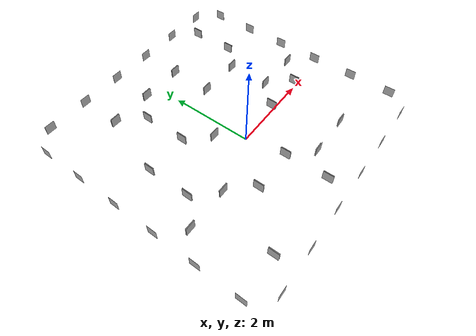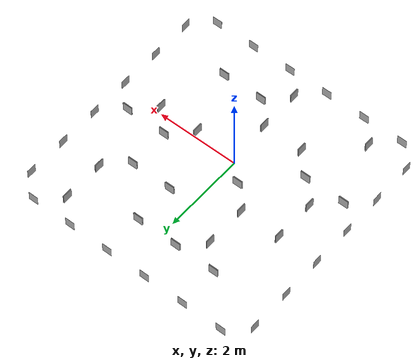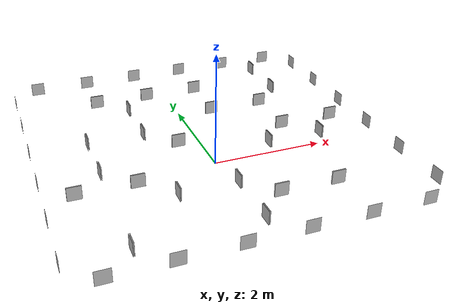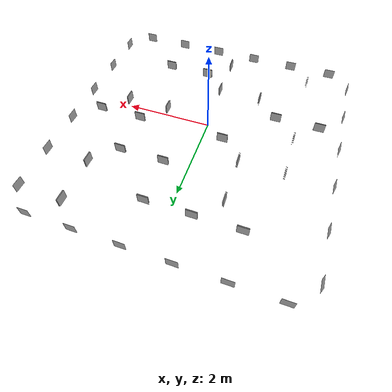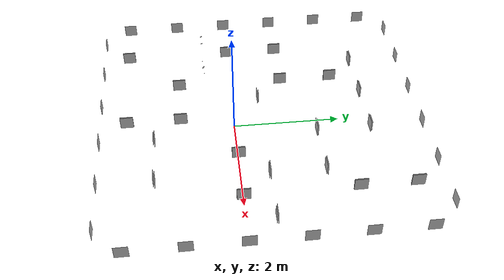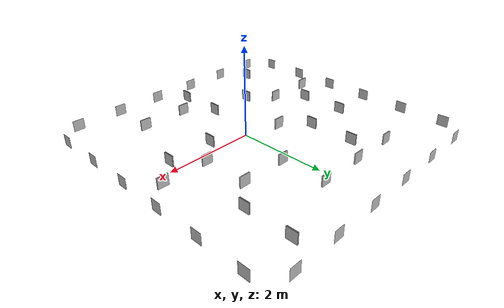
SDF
<sdf version="1.5">
 <world name="maze_6x6_v1">
  <plugin name="gz::sim::systems::Physics" filename="libgz-sim-physics-system.so"/>
  <plugin name="gz::sim::systems::UserCommands" filename="libgz-sim-user-commands-system.so"/>
  <plugin name="gz::sim::systems::SceneBroadcaster" filename="libgz-sim-scene-broadcaster-system.so"/>
  <plugin name="gz::sim::systems::Sensors" filename="libgz-sim-sensors-system.so">
   <render_engine>ogre2</render_engine>
  </plugin>
  <plugin name="gz::sim::systems::Imu" filename="libgz-sim-imu-system.so"/>
  <plugin name="gz::sim::systems::NavSat" filename="libgz-sim-navsat-system.so"/>
  <physics type="ode">
   <max_step_size>0.00625</max_step_size>
   <real_time_factor>1</real_time_factor>
   <real_time_update_rate>160</real_time_update_rate>
   <gravity>0 0 -9.8</gravity>
  </physics>
  <scene>
   <shadows>false</shadows>
   <ambient>0.2 0.2 0.2 1</ambient>
   <background>1 1 1 1</background>
   <grid>false</grid>
   <origin_visual>false</origin_visual>
  </scene>
  <light name="sun" type="directional">
   <cast_shadows>false</cast_shadows>
   <pose>0 0 10 0 0 0</pose>
   <diffuse>0.9 0.9 0.9 1</diffuse>
   <specular>0.2 0.2 0.2 1</specular>
   <direction>-0.3 0.2 -1</direction>
  </light>
  <light name="camera_spot_1_light" type="spot">
   <pose>-6 4 4 0 -1 -0.8</pose>
   <diffuse>0.5 0.5 0.5 1</diffuse>
   <specular>0.1 0.1 0.1 1</specular>
   <direction>0 0 -1</direction>
   <attenuation>
    <range>20</range>
    <constant>0.2</constant>
    <linear>0.01</linear>
    <quadratic>0.001</quadratic>
   </attenuation>
   <cast_shadows>0</cast_shadows>
   <spot><inner_angle>0.6</inner_angle><outer_angle>1</outer_angle><falloff>1</falloff></spot>
  </light>
  <light name="camera_spot_2_light" type="spot">
   <pose>5 -3 4 0 0.8 -0.6</pose>
   <diffuse>0.5 0.5 0.5 1</diffuse>
   <specular>0.1 0.1 0.1 1</specular>
   <direction>0 0 -1</direction>
   <attenuation>
    <range>20</range>
    <constant>0.3</constant>
    <linear>0.01</linear>
    <quadratic>0.001</quadratic>
   </attenuation>
   <cast_shadows>0</cast_shadows>
   <spot><inner_angle>0.6</inner_angle><outer_angle>1</outer_angle><falloff>1</falloff></spot>
  </light>
  <include><uri>model://maze_3_tags</uri><pose>-3 -2.5 0 0 0 0</pose></include>
 </world>
</sdf>

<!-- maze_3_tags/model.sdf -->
<sdf version="1.5">

 <model name="tag36h11_maze_3">
    <static>true</static>
    <link name='tags'>

<!-- Row 0, outer wall along increasing x axis (y:0) -->
<!-- Tags 0 to 9 -->
      <visual name='tag36_11_00000'>
        <!-- Y: sets yaw or direction towards the ar tag is pointing to -->
        <pose>0.5 0.011 0.3 1.5708 0 3.14159</pose>
        <cast_shadows>false</cast_shadows>
        <geometry>
          <plane>
            <normal>0 0 1</normal>
            <size>0.24 0.24</size>
          </plane>
        </geometry>
        <material>
          <script>
            <uri>model://maze_3_tags/materials/scripts</uri>
            <uri>model://maze_3_tags/materials/textures</uri>
            <name>tag36_11/00000</name>
          </script>
        </material>
      </visual>

      <visual name='tag36_11_00001'>
        <pose>1.5 0.011 0.3 1.5708 0 3.14159</pose>
        <cast_shadows>false</cast_shadows>
        <geometry>
          <plane>
            <normal>0 0 1</normal>
            <size>0.24 0.24</size>
          </plane>
        </geometry>
        <material>
          <script>
            <uri>model://maze_3_tags/materials/scripts</uri>
            <uri>model://maze_3_tags/materials/textures</uri>
            <name>tag36_11/00001</name>
          </script>
        </material>
      </visual>

      <visual name='tag36_11_00002'>
        <pose>2.5 0.011 0.3 1.5708 0 3.14159</pose>
        <cast_shadows>false</cast_shadows>
        <geometry>
          <plane>
            <normal>0 0 1</normal>
            <size>0.24 0.24</size>
          </plane>
        </geometry>
        <material>
          <script>
            <uri>model://maze_3_tags/materials/scripts</uri>
            <uri>model://maze_3_tags/materials/textures</uri>
            <name>tag36_11/00002</name>
          </script>
        </material>
      </visual>

      <visual name='tag36_11_00003'>
        <pose>3.5 0.011 0.3 1.5708 0 3.14159</pose>
        <cast_shadows>false</cast_shadows>
        <geometry>
          <plane>
            <normal>0 0 1</normal>
            <size>0.24 0.24</size>
          </plane>
        </geometry>
        <material>
          <script>
            <uri>model://maze_3_tags/materials/scripts</uri>
            <uri>model://maze_3_tags/materials/textures</uri>
            <name>tag36_11/00003</name>
          </script>
        </material>
      </visual>

      <visual name='tag36_11_00004'>
        <pose>4.5 0.011 0.3 1.5708 0 3.14159</pose>
        <cast_shadows>false</cast_shadows>
        <geometry>
          <plane>
            <normal>0 0 1</normal>
            <size>0.24 0.24</size>
          </plane>
        </geometry>
        <material>
          <script>
            <uri>model://maze_3_tags/materials/scripts</uri>
            <uri>model://maze_3_tags/materials/textures</uri>
            <name>tag36_11/00004</name>
          </script>
        </material>
      </visual>

      <visual name='tag36_11_00005'>
        <pose>5.5 0.011 0.3 1.5708 0 3.14159</pose>
        <cast_shadows>false</cast_shadows>
        <geometry>
          <plane>
            <normal>0 0 1</normal>
            <size>0.24 0.24</size>
          </plane>
        </geometry>
        <material>
          <script>
            <uri>model://maze_3_tags/materials/scripts</uri>
            <uri>model://maze_3_tags/materials/textures</uri>
            <name>tag36_11/00005</name>
          </script>
        </material>
      </visual>

<!-- Row 1, first row of panels along increasing x axis (y:1) -->
      <!-- Tags 10 to 29 -->
      <!-- Panel 1 in Row 1 -->
      <!-- Panel 2 in Row 1 -->

      <!-- Panel 3 in Row 1 -->

      <!-- Panel 4 in Row 1 -->
      <visual name='tag36_11_00016'>
        <pose>3.5 1.011 0.3 1.5708 0 3.14159</pose>
        <cast_shadows>false</cast_shadows>
        <geometry>
          <plane>
            <normal>0 0 1</normal>
            <size>0.24 0.24</size>
          </plane>
        </geometry>
        <material>
          <script>
            <uri>model://maze_3_tags/materials/scripts</uri>
            <uri>model://maze_3_tags/materials/textures</uri>
            <name>tag36_11/00016</name>
          </script>
        </material>
      </visual>

      <visual name='tag36_11_00017'>
        <pose>3.5 0.989 0.3 1.5708 0 0</pose>
        <cast_shadows>false</cast_shadows>
        <geometry>
          <plane>
            <normal>0 0 1</normal>
            <size>0.24 0.24</size>
          </plane>
        </geometry>
        <material>
          <script>
            <uri>model://maze_3_tags/materials/scripts</uri>
            <uri>model://maze_3_tags/materials/textures</uri>
            <name>tag36_11/00017</name>
          </script>
        </material>
      </visual>

     <!-- Panel 5 in Row 1 -->
      <visual name='tag36_11_00018'>
        <pose>4.5 1.011 0.3 1.5708 0 3.14159</pose>
        <cast_shadows>false</cast_shadows>
        <geometry>
          <plane>
            <normal>0 0 1</normal>
            <size>0.24 0.24</size>
          </plane>
        </geometry>
        <material>
          <script>
            <uri>model://maze_3_tags/materials/scripts</uri>
            <uri>model://maze_3_tags/materials/textures</uri>
            <name>tag36_11/00018</name>
          </script>
        </material>
      </visual>

      <visual name='tag36_11_00019'>
        <pose>4.5 0.989 0.3 1.5708 0 0</pose>
        <cast_shadows>false</cast_shadows>
        <geometry>
          <plane>
            <normal>0 0 1</normal>
            <size>0.24 0.24</size>
          </plane>
        </geometry>
        <material>
          <script>
            <uri>model://maze_3_tags/materials/scripts</uri>
            <uri>model://maze_3_tags/materials/textures</uri>
            <name>tag36_11/00019</name>
          </script>
        </material>
      </visual>

      <!-- Panel 6 in Row 1 -->

<!-- Row 2, second row of panels along increasing x axis (y:2) -->
      <!-- Tags 30 to 49 -->
      <!-- Panel 1 in Row 2 -->
      <visual name='tag36_11_00030'>
        <!-- Y: sets yaw or direction towards the ar tag is pointing to -->
        <pose>0.5 2.011 0.3 1.5708 0 3.14159</pose>
        <cast_shadows>false</cast_shadows>
        <geometry>
          <plane>
            <normal>0 0 1</normal>
            <size>0.24 0.24</size>
          </plane>
        </geometry>
        <material>
          <script>
            <uri>model://maze_3_tags/materials/scripts</uri>
            <uri>model://maze_3_tags/materials/textures</uri>
            <name>tag36_11/00030</name>
          </script>
        </material>
      </visual>

      <visual name='tag36_11_00031'>
        <!-- Y: sets yaw or direction towards the ar tag is pointing to -->
        <pose>0.5 1.989 0.3 1.5708 0 0</pose>
        <cast_shadows>false</cast_shadows>
        <geometry>
          <plane>
            <normal>0 0 1</normal>
            <size>0.24 0.24</size>
          </plane>
        </geometry>
        <material>
          <script>
            <uri>model://maze_3_tags/materials/scripts</uri>
            <uri>model://maze_3_tags/materials/textures</uri>
            <name>tag36_11/00031</name>
          </script>
        </material>
      </visual>

      <!-- Panel 2 in Row 2 -->
      <visual name='tag36_11_00032'>
        <pose>1.5 2.011 0.3 1.5708 0 3.14159</pose>
        <cast_shadows>false</cast_shadows>
        <geometry>
          <plane>
            <normal>0 0 1</normal>
            <size>0.24 0.24</size>
          </plane>
        </geometry>
        <material>
          <script>
            <uri>model://maze_3_tags/materials/scripts</uri>
            <uri>model://maze_3_tags/materials/textures</uri>
            <name>tag36_11/00032</name>
          </script>
        </material>
      </visual>

      <visual name='tag36_11_00033'>
        <pose>1.5 1.989 0.3 1.5708 0 0</pose>
        <cast_shadows>false</cast_shadows>
        <geometry>
          <plane>
            <normal>0 0 1</normal>
            <size>0.24 0.24</size>
          </plane>
        </geometry>
        <material>
          <script>
            <uri>model://maze_3_tags/materials/scripts</uri>
            <uri>model://maze_3_tags/materials/textures</uri>
            <name>tag36_11/00033</name>
          </script>
        </material>
      </visual>

      <!-- Panel 3 in Row 2 -->

      <!-- Panel 4 in Row 2 -->

     <!-- Panel 5 in Row 2 -->

      <!-- Panel 6 in Row 2 -->

<!-- Row 3, third row of panels along increasing x axis (y:3) -->
      <!-- Tags 50 to 69 -->
      <!-- Panel 1 in Row 3 -->
      <!-- Panel 2 in Row 3 -->
      <!-- Panel 3 in Row 3 -->
      <visual name='tag36_11_00054'>
        <pose>2.5 3.011 0.3 1.5708 0 3.14159</pose>
        <cast_shadows>false</cast_shadows>
        <geometry>
          <plane>
            <normal>0 0 1</normal>
            <size>0.24 0.24</size>
          </plane>
        </geometry>
        <material>
          <script>
            <uri>model://maze_3_tags/materials/scripts</uri>
            <uri>model://maze_3_tags/materials/textures</uri>
            <name>tag36_11/00054</name>
          </script>
        </material>
      </visual>

      <visual name='tag36_11_00055'>
        <pose>2.5 2.989 0.3 1.5708 0 0</pose>
        <cast_shadows>false</cast_shadows>
        <geometry>
          <plane>
            <normal>0 0 1</normal>
            <size>0.24 0.24</size>
          </plane>
        </geometry>
        <material>
          <script>
            <uri>model://maze_3_tags/materials/scripts</uri>
            <uri>model://maze_3_tags/materials/textures</uri>
            <name>tag36_11/00055</name>
          </script>
        </material>
      </visual>

      <!-- Panel 4 in Row 3 -->
     <!-- Panel 5 in Row 3 -->
      <visual name='tag36_11_00058'>
        <pose>4.5 3.011 0.3 1.5708 0 3.14159</pose>
        <cast_shadows>false</cast_shadows>
        <geometry>
          <plane>
            <normal>0 0 1</normal>
            <size>0.24 0.24</size>
          </plane>
        </geometry>
        <material>
          <script>
            <uri>model://maze_3_tags/materials/scripts</uri>
            <uri>model://maze_3_tags/materials/textures</uri>
            <name>tag36_11/00058</name>
          </script>
        </material>
      </visual>

      <visual name='tag36_11_00059'>
        <pose>4.5 2.989 0.3 1.5708 0 0</pose>
        <cast_shadows>false</cast_shadows>
        <geometry>
          <plane>
            <normal>0 0 1</normal>
            <size>0.24 0.24</size>
          </plane>
        </geometry>
        <material>
          <script>
            <uri>model://maze_3_tags/materials/scripts</uri>
            <uri>model://maze_3_tags/materials/textures</uri>
            <name>tag36_11/00059</name>
          </script>
        </material>
      </visual>

      <!-- Panel 6 in Row 3 -->
      <visual name='tag36_11_00060'>
        <pose>5.5 3.011 0.3 1.5708 0 3.14159</pose>
        <cast_shadows>false</cast_shadows>
        <geometry>
          <plane>
            <normal>0 0 1</normal>
            <size>0.24 0.24</size>
          </plane>
        </geometry>
        <material>
          <script>
            <uri>model://maze_3_tags/materials/scripts</uri>
            <uri>model://maze_3_tags/materials/textures</uri>
            <name>tag36_11/00060</name>
          </script>
        </material>
      </visual>

      <visual name='tag36_11_00061'>
        <pose>5.5 2.989 0.3 1.5708 0 0</pose>
        <cast_shadows>false</cast_shadows>
        <geometry>
          <plane>
            <normal>0 0 1</normal>
            <size>0.24 0.24</size>
          </plane>
        </geometry>
        <material>
          <script>
            <uri>model://maze_3_tags/materials/scripts</uri>
            <uri>model://maze_3_tags/materials/textures</uri>
            <name>tag36_11/00061</name>
          </script>
        </material>
      </visual>

<!-- Row 4, fourth row of panels along increasing x axis (y:4) -->
      <!-- Tags 70 to 89 -->
      <!-- Panel 1 in Row 4 -->
      <!-- Panel 2 in Row 4 -->
      <!-- Panel 3 in Row 4 -->
      <!-- Panel 4 in Row 4 -->
      <visual name='tag36_11_00076'>
        <pose>3.5 4.011 0.3 1.5708 0 3.14159</pose>
        <cast_shadows>false</cast_shadows>
        <geometry>
          <plane>
            <normal>0 0 1</normal>
            <size>0.24 0.24</size>
          </plane>
        </geometry>
        <material>
          <script>
            <uri>model://maze_3_tags/materials/scripts</uri>
            <uri>model://maze_3_tags/materials/textures</uri>
            <name>tag36_11/00076</name>
          </script>
        </material>
      </visual>

      <visual name='tag36_11_00077'>
        <pose>3.5 3.989 0.3 1.5708 0 0</pose>
        <cast_shadows>false</cast_shadows>
        <geometry>
          <plane>
            <normal>0 0 1</normal>
            <size>0.24 0.24</size>
          </plane>
        </geometry>
        <material>
          <script>
            <uri>model://maze_3_tags/materials/scripts</uri>
            <uri>model://maze_3_tags/materials/textures</uri>
            <name>tag36_11/00077</name>
          </script>
        </material>
      </visual>

     <!-- Panel 5 in Row 4 -->
      <visual name='tag36_11_00078'>
        <pose>4.5 4.011 0.3 1.5708 0 3.14159</pose>
        <cast_shadows>false</cast_shadows>
        <geometry>
          <plane>
            <normal>0 0 1</normal>
            <size>0.24 0.24</size>
          </plane>
        </geometry>
        <material>
          <script>
            <uri>model://maze_3_tags/materials/scripts</uri>
            <uri>model://maze_3_tags/materials/textures</uri>
            <name>tag36_11/00078</name>
          </script>
        </material>
      </visual>

      <visual name='tag36_11_00079'>
        <pose>4.5 3.989 0.3 1.5708 0 0</pose>
        <cast_shadows>false</cast_shadows>
        <geometry>
          <plane>
            <normal>0 0 1</normal>
            <size>0.24 0.24</size>
          </plane>
        </geometry>
        <material>
          <script>
            <uri>model://maze_3_tags/materials/scripts</uri>
            <uri>model://maze_3_tags/materials/textures</uri>
            <name>tag36_11/00079</name>
          </script>
        </material>
      </visual>

      <!-- Panel 6 in Row 4 -->
<!-- Row 5, fifth row of panels along increasing x axis (y:5) -->
      <!-- Tags 90 to 109 -->
      <!-- Panel 1 in Row 5 -->
      <!-- Panel 2 in Row 5 -->

      <visual name='tag36_11_00092'>
        <pose>1.5 5.011 0.3 1.5708 0 3.14159</pose>
        <cast_shadows>false</cast_shadows>
        <geometry>
          <plane>
            <normal>0 0 1</normal>
            <size>0.24 0.24</size>
          </plane>
        </geometry>
        <material>
          <script>
            <uri>model://maze_3_tags/materials/scripts</uri>
            <uri>model://maze_3_tags/materials/textures</uri>
            <name>tag36_11/00092</name>
          </script>
        </material>
      </visual>

      <visual name='tag36_11_00093'>
        <pose>1.5 4.989 0.3 1.5708 0 0</pose>
        <cast_shadows>false</cast_shadows>
        <geometry>
          <plane>
            <normal>0 0 1</normal>
            <size>0.24 0.24</size>
          </plane>
        </geometry>
        <material>
          <script>
            <uri>model://maze_3_tags/materials/scripts</uri>
            <uri>model://maze_3_tags/materials/textures</uri>
            <name>tag36_11/00093</name>
          </script>
        </material>
      </visual>

      <!-- Panel 3 in Row 5 -->
      <visual name='tag36_11_00094'>
        <pose>2.5 5.011 0.3 1.5708 0 3.14159</pose>
        <cast_shadows>false</cast_shadows>
        <geometry>
          <plane>
            <normal>0 0 1</normal>
            <size>0.24 0.24</size>
          </plane>
        </geometry>
        <material>
          <script>
            <uri>model://maze_3_tags/materials/scripts</uri>
            <uri>model://maze_3_tags/materials/textures</uri>
            <name>tag36_11/00094</name>
          </script>
        </material>
      </visual>

      <visual name='tag36_11_00095'>
        <pose>2.5 4.989 0.3 1.5708 0 0</pose>
        <cast_shadows>false</cast_shadows>
        <geometry>
          <plane>
            <normal>0 0 1</normal>
            <size>0.24 0.24</size>
          </plane>
        </geometry>
        <material>
          <script>
            <uri>model://maze_3_tags/materials/scripts</uri>
            <uri>model://maze_3_tags/materials/textures</uri>
            <name>tag36_11/00095</name>
          </script>
        </material>
      </visual>

      <!-- Panel 4 in Row 5 -->
      <visual name='tag36_11_00096'>
        <pose>3.5 5.011 0.3 1.5708 0 3.14159</pose>
        <cast_shadows>false</cast_shadows>
        <geometry>
          <plane>
            <normal>0 0 1</normal>
            <size>0.24 0.24</size>
          </plane>
        </geometry>
        <material>
          <script>
            <uri>model://maze_3_tags/materials/scripts</uri>
            <uri>model://maze_3_tags/materials/textures</uri>
            <name>tag36_11/00096</name>
          </script>
        </material>
      </visual>

      <visual name='tag36_11_00097'>
        <pose>3.5 4.989 0.3 1.5708 0 0</pose>
        <cast_shadows>false</cast_shadows>
        <geometry>
          <plane>
            <normal>0 0 1</normal>
            <size>0.24 0.24</size>
          </plane>
        </geometry>
        <material>
          <script>
            <uri>model://maze_3_tags/materials/scripts</uri>
            <uri>model://maze_3_tags/materials/textures</uri>
            <name>tag36_11/00097</name>
          </script>
        </material>
      </visual>

     <!-- Panel 5 in Row 5 -->
      <!-- Panel 6 in Row 5 -->

<!-- Row 6, sixth row of panels along increasing x axis (y:6) -->
      <!-- Tags 110 to 129 -->
      <!-- Panel 1 in Row 6 -->
      <visual name='tag36_11_00111'>
        <pose>0.5 5.989 0.3 1.5708 0 0</pose>
        <cast_shadows>false</cast_shadows>
        <geometry>
          <plane>
            <normal>0 0 1</normal>
            <size>0.24 0.24</size>
          </plane>
        </geometry>
        <material>
          <script>
            <uri>model://maze_3_tags/materials/scripts</uri>
            <uri>model://maze_3_tags/materials/textures</uri>
            <name>tag36_11/00111</name>
          </script>
        </material>
      </visual>

      <!-- Panel 2 in Row 6 -->
      <visual name='tag36_11_00113'>
        <pose>1.5 5.989 0.3 1.5708 0 0</pose>
        <cast_shadows>false</cast_shadows>
        <geometry>
          <plane>
            <normal>0 0 1</normal>
            <size>0.24 0.24</size>
          </plane>
        </geometry>
        <material>
          <script>
            <uri>model://maze_3_tags/materials/scripts</uri>
            <uri>model://maze_3_tags/materials/textures</uri>
            <name>tag36_11/00113</name>
          </script>
        </material>
      </visual>

      <!-- Panel 3 in Row 6 -->
      <visual name='tag36_11_00115'>
        <pose>2.5 5.989 0.3 1.5708 0 0</pose>
        <cast_shadows>false</cast_shadows>
        <geometry>
          <plane>
            <normal>0 0 1</normal>
            <size>0.24 0.24</size>
          </plane>
        </geometry>
        <material>
          <script>
            <uri>model://maze_3_tags/materials/scripts</uri>
            <uri>model://maze_3_tags/materials/textures</uri>
            <name>tag36_11/00115</name>
          </script>
        </material>
      </visual>

      <!-- Panel 4 in Row 6 -->
      <visual name='tag36_11_00117'>
        <pose>3.5 5.989 0.3 1.5708 0 0</pose>
        <cast_shadows>false</cast_shadows>
        <geometry>
          <plane>
            <normal>0 0 1</normal>
            <size>0.24 0.24</size>
          </plane>
        </geometry>
        <material>
          <script>
            <uri>model://maze_3_tags/materials/scripts</uri>
            <uri>model://maze_3_tags/materials/textures</uri>
            <name>tag36_11/00117</name>
          </script>
        </material>
      </visual>

     <!-- Panel 5 in Row 6 -->
      <visual name='tag36_11_00119'>
        <pose>4.5 5.989 0.3 1.5708 0 0</pose>
        <cast_shadows>false</cast_shadows>
        <geometry>
          <plane>
            <normal>0 0 1</normal>
            <size>0.24 0.24</size>
          </plane>
        </geometry>
        <material>
          <script>
            <uri>model://maze_3_tags/materials/scripts</uri>
            <uri>model://maze_3_tags/materials/textures</uri>
            <name>tag36_11/00119</name>
          </script>
        </material>
      </visual>

      <!-- Panel 6 in Row 6 -->
      <visual name='tag36_11_00121'>
        <pose>5.5 5.989 0.3 1.5708 0 0</pose>
        <cast_shadows>false</cast_shadows>
        <geometry>
          <plane>
            <normal>0 0 1</normal>
            <size>0.24 0.24</size>
          </plane>
        </geometry>
        <material>
          <script>
            <uri>model://maze_3_tags/materials/scripts</uri>
            <uri>model://maze_3_tags/materials/textures</uri>
            <name>tag36_11/00121</name>
          </script>
        </material>
      </visual>

<!-- Placeholder Row 7, seventh row of panels along increasing x axis (y:7) -->
      <!-- Tags 130 to 149 -->

<!-- Placeholder Row 8, seventh row of panels along increasing x axis (y:8) -->
      <!-- Tags 150 to 169 -->

<!-- Placeholder Row 9, seventh row of panels along increasing x axis (y:9) -->
      <!-- Tags 170 to 189 -->

<!-- Placeholder Row 10, seventh row of panels along increasing x axis (y:10) -->
      <!-- Tags 190 to 209 -->

<!-- Column 0, outer wall along increasing y axis (x:0) -->
<!-- Tags 300 to 309 -->
      <visual name='tag36_11_00300'>
        <!-- Y: sets yaw or direction towards the ar tag is pointing to -->
        <pose>0.011 0.5 0.3 1.5708 0 1.5708</pose>
        <cast_shadows>false</cast_shadows>
        <geometry>
          <plane>
            <normal>0 0 1</normal>
            <size>0.24 0.24</size>
          </plane>
        </geometry>
        <material>
          <script>
            <uri>model://maze_3_tags/materials/scripts</uri>
            <uri>model://maze_3_tags/materials/textures</uri>
            <name>tag36_11/00300</name>
          </script>
        </material>
      </visual>

      <visual name='tag36_11_00301'>
        <pose>0.011 1.5 0.3 1.5708 0 1.5708</pose>
        <cast_shadows>false</cast_shadows>
        <geometry>
          <plane>
            <normal>0 0 1</normal>
            <size>0.24 0.24</size>
          </plane>
        </geometry>
        <material>
          <script>
            <uri>model://maze_3_tags/materials/scripts</uri>
            <uri>model://maze_3_tags/materials/textures</uri>
            <name>tag36_11/00301</name>
          </script>
        </material>
      </visual>

      <visual name='tag36_11_00302'>
        <pose>0.011 2.5 0.3 1.5708 0 1.5708</pose>
        <cast_shadows>false</cast_shadows>
        <geometry>
          <plane>
            <normal>0 0 1</normal>
            <size>0.24 0.24</size>
          </plane>
        </geometry>
        <material>
          <script>
            <uri>model://maze_3_tags/materials/scripts</uri>
            <uri>model://maze_3_tags/materials/textures</uri>
            <name>tag36_11/00302</name>
          </script>
        </material>
      </visual>

      <visual name='tag36_11_00303'>
        <pose>0.011 3.5 0.3 1.5708 0 1.5708</pose>
        <cast_shadows>false</cast_shadows>
        <geometry>
          <plane>
            <normal>0 0 1</normal>
            <size>0.24 0.24</size>
          </plane>
        </geometry>
        <material>
          <script>
            <uri>model://maze_3_tags/materials/scripts</uri>
            <uri>model://maze_3_tags/materials/textures</uri>
            <name>tag36_11/00303</name>
          </script>
        </material>
      </visual>

      <visual name='tag36_11_00304'>
        <pose>0.011 4.5 0.3 1.5708 0 1.5708</pose>
        <cast_shadows>false</cast_shadows>
        <geometry>
          <plane>
            <normal>0 0 1</normal>
            <size>0.24 0.24</size>
          </plane>
        </geometry>
        <material>
          <script>
            <uri>model://maze_3_tags/materials/scripts</uri>
            <uri>model://maze_3_tags/materials/textures</uri>
            <name>tag36_11/00304</name>
          </script>
        </material>
      </visual>

      <visual name='tag36_11_00305'>
        <pose>0.011 5.5 0.3 1.5708 0 1.5708</pose>
        <cast_shadows>false</cast_shadows>
        <geometry>
          <plane>
            <normal>0 0 1</normal>
            <size>0.24 0.24</size>
          </plane>
        </geometry>
        <material>
          <script>
            <uri>model://maze_3_tags/materials/scripts</uri>
            <uri>model://maze_3_tags/materials/textures</uri>
            <name>tag36_11/00305</name>
          </script>
        </material>
      </visual>

<!-- Column 1, first row of panels along increasing y axis (x:1) -->
      <!-- Tags 310 to 329 -->
      <!-- Panel 1 in Column 1 -->

      <visual name='tag36_11_00310'>
        <pose>1.011 0.5 0.3 1.5708 0 1.5708</pose>
        <cast_shadows>false</cast_shadows>
        <geometry>
          <plane>
            <normal>0 0 1</normal>
            <size>0.24 0.24</size>
          </plane>
        </geometry>
        <material>
          <script>
            <uri>model://maze_3_tags/materials/scripts</uri>
            <uri>model://maze_3_tags/materials/textures</uri>
            <name>tag36_11/00310</name>
          </script>
        </material>
      </visual>

      <visual name='tag36_11_00311'>
        <pose>0.989 0.5 0.3 1.5708 0 -1.5708</pose>
        <cast_shadows>false</cast_shadows>
        <geometry>
          <plane>
            <normal>0 0 1</normal>
            <size>0.24 0.24</size>
          </plane>
        </geometry>
        <material>
          <script>
            <uri>model://maze_3_tags/materials/scripts</uri>
            <uri>model://maze_3_tags/materials/textures</uri>
            <name>tag36_11/00311</name>
          </script>
        </material>
      </visual>

      <!-- Panel 2 in Column 1 -->

      <!-- Panel 3 in Column 1 -->
      <visual name='tag36_11_00314'>
        <pose>1.011 2.5 0.3 1.5708 0 1.5708</pose>
        <cast_shadows>false</cast_shadows>
        <geometry>
          <plane>
            <normal>0 0 1</normal>
            <size>0.24 0.24</size>
          </plane>
        </geometry>
        <material>
          <script>
            <uri>model://maze_3_tags/materials/scripts</uri>
            <uri>model://maze_3_tags/materials/textures</uri>
            <name>tag36_11/00314</name>
          </script>
        </material>
      </visual>

      <visual name='tag36_11_00315'>
        <pose>0.989 2.5 0.3 1.5708 0 -1.5708</pose>
        <cast_shadows>false</cast_shadows>
        <geometry>
          <plane>
            <normal>0 0 1</normal>
            <size>0.24 0.24</size>
          </plane>
        </geometry>
        <material>
          <script>
            <uri>model://maze_3_tags/materials/scripts</uri>
            <uri>model://maze_3_tags/materials/textures</uri>
            <name>tag36_11/00315</name>
          </script>
        </material>
      </visual>

      <!-- Panel 4 in Column 1 -->
      <visual name='tag36_11_00316'>
        <pose>1.011 3.5 0.3 1.5708 0 1.5708</pose>
        <cast_shadows>false</cast_shadows>
        <geometry>
          <plane>
            <normal>0 0 1</normal>
            <size>0.24 0.24</size>
          </plane>
        </geometry>
        <material>
          <script>
            <uri>model://maze_3_tags/materials/scripts</uri>
            <uri>model://maze_3_tags/materials/textures</uri>
            <name>tag36_11/00316</name>
          </script>
        </material>
      </visual>

      <visual name='tag36_11_00317'>
        <pose>0.989 3.5 0.3 1.5708 0 -1.5708</pose>
        <cast_shadows>false</cast_shadows>
        <geometry>
          <plane>
            <normal>0 0 1</normal>
            <size>0.24 0.24</size>
          </plane>
        </geometry>
        <material>
          <script>
            <uri>model://maze_3_tags/materials/scripts</uri>
            <uri>model://maze_3_tags/materials/textures</uri>
            <name>tag36_11/00317</name>
          </script>
        </material>
      </visual>

     <!-- Panel 5 in Column 1 -->

      <!-- Panel 6 in Column 1 -->

<!-- Column 2, second row of panels along increasing y axis (x:2) -->
      <!-- Tags 330 to 349 -->
      <!-- Panel 1 in Column 2 -->

      <!-- Panel 2 in Column 2 -->
      <visual name='tag36_11_00332'>
        <pose>2.011 1.5 0.3 1.5708 0 1.5708</pose>
        <cast_shadows>false</cast_shadows>
        <geometry>
          <plane>
            <normal>0 0 1</normal>
            <size>0.24 0.24</size>
          </plane>
        </geometry>
        <material>
          <script>
            <uri>model://maze_3_tags/materials/scripts</uri>
            <uri>model://maze_3_tags/materials/textures</uri>
            <name>tag36_11/00332</name>
          </script>
        </material>
      </visual>

      <visual name='tag36_11_00333'>
        <pose>1.989 1.5 0.3 1.5708 0 -1.5708</pose>
        <cast_shadows>false</cast_shadows>
        <geometry>
          <plane>
            <normal>0 0 1</normal>
            <size>0.24 0.24</size>
          </plane>
        </geometry>
        <material>
          <script>
            <uri>model://maze_3_tags/materials/scripts</uri>
            <uri>model://maze_3_tags/materials/textures</uri>
            <name>tag36_11/00333</name>
          </script>
        </material>
      </visual>

      <!-- Panel 3 in Column 2 -->

      <!-- Panel 4 in Column 2 -->
      <visual name='tag36_11_00336'>
        <pose>2.011 3.5 0.3 1.5708 0 1.5708</pose>
        <cast_shadows>false</cast_shadows>
        <geometry>
          <plane>
            <normal>0 0 1</normal>
            <size>0.24 0.24</size>
          </plane>
        </geometry>
        <material>
          <script>
            <uri>model://maze_3_tags/materials/scripts</uri>
            <uri>model://maze_3_tags/materials/textures</uri>
            <name>tag36_11/00336</name>
          </script>
        </material>
      </visual>

      <visual name='tag36_11_00337'>
        <pose>1.989 3.5 0.3 1.5708 0 -1.5708</pose>
        <cast_shadows>false</cast_shadows>
        <geometry>
          <plane>
            <normal>0 0 1</normal>
            <size>0.24 0.24</size>
          </plane>
        </geometry>
        <material>
          <script>
            <uri>model://maze_3_tags/materials/scripts</uri>
            <uri>model://maze_3_tags/materials/textures</uri>
            <name>tag36_11/00337</name>
          </script>
        </material>
      </visual>

     <!-- Panel 5 in Column 2 -->
      <visual name='tag36_11_00338'>
        <pose>2.011 4.5 0.3 1.5708 0 1.5708</pose>
        <cast_shadows>false</cast_shadows>
        <geometry>
          <plane>
            <normal>0 0 1</normal>
            <size>0.24 0.24</size>
          </plane>
        </geometry>
        <material>
          <script>
            <uri>model://maze_3_tags/materials/scripts</uri>
            <uri>model://maze_3_tags/materials/textures</uri>
            <name>tag36_11/00338</name>
          </script>
        </material>
      </visual>

      <visual name='tag36_11_00339'>
        <pose>1.989 4.5 0.3 1.5708 0 -1.5708</pose>
        <cast_shadows>false</cast_shadows>
        <geometry>
          <plane>
            <normal>0 0 1</normal>
            <size>0.24 0.24</size>
          </plane>
        </geometry>
        <material>
          <script>
            <uri>model://maze_3_tags/materials/scripts</uri>
            <uri>model://maze_3_tags/materials/textures</uri>
            <name>tag36_11/00339</name>
          </script>
        </material>
      </visual>

      <!-- Panel 6 in Column 2 -->

<!-- Column 3, third row of panels along increasing y axis (x:3) -->
      <!-- Tags 350 to 369 -->
      <!-- Panel 1 in Column 3 -->

      <visual name='tag36_11_00350'>
        <pose>3.011 0.5 0.3 1.5708 0 1.5708</pose>
        <cast_shadows>false</cast_shadows>
        <geometry>
          <plane>
            <normal>0 0 1</normal>
            <size>0.24 0.24</size>
          </plane>
        </geometry>
        <material>
          <script>
            <uri>model://maze_3_tags/materials/scripts</uri>
            <uri>model://maze_3_tags/materials/textures</uri>
            <name>tag36_11/00350</name>
          </script>
        </material>
      </visual>

      <visual name='tag36_11_00351'>
        <pose>2.989 0.5 0.3 1.5708 0 -1.5708</pose>
        <cast_shadows>false</cast_shadows>
        <geometry>
          <plane>
            <normal>0 0 1</normal>
            <size>0.24 0.24</size>
          </plane>
        </geometry>
        <material>
          <script>
            <uri>model://maze_3_tags/materials/scripts</uri>
            <uri>model://maze_3_tags/materials/textures</uri>
            <name>tag36_11/00351</name>
          </script>
        </material>
      </visual>

      <!-- Panel 2 in Column 3 -->

      <visual name='tag36_11_00352'>
        <pose>3.011 1.5 0.3 1.5708 0 1.5708</pose>
        <cast_shadows>false</cast_shadows>
        <geometry>
          <plane>
            <normal>0 0 1</normal>
            <size>0.24 0.24</size>
          </plane>
        </geometry>
        <material>
          <script>
            <uri>model://maze_3_tags/materials/scripts</uri>
            <uri>model://maze_3_tags/materials/textures</uri>
            <name>tag36_11/00352</name>
          </script>
        </material>
      </visual>

      <visual name='tag36_11_00353'>
        <pose>2.989 1.5 0.3 1.5708 0 -1.5708</pose>
        <cast_shadows>false</cast_shadows>
        <geometry>
          <plane>
            <normal>0 0 1</normal>
            <size>0.24 0.24</size>
          </plane>
        </geometry>
        <material>
          <script>
            <uri>model://maze_3_tags/materials/scripts</uri>
            <uri>model://maze_3_tags/materials/textures</uri>
            <name>tag36_11/00353</name>
          </script>
        </material>
      </visual>

      <!-- Panel 3 in Column 3 -->

      <!-- Panel 4 in Column 3 -->

     <!-- Panel 5 in Column 3 -->

      <!-- Panel 6 in Column 3 -->

<!-- Column 4, fourth row of panels along increasing y axis (x:4) -->
      <!-- Tags 370 to 389 -->
      <!-- Panel 1 in Column 4 -->
      <!-- Panel 2 in Column 4 -->
      <!-- Panel 3 in Column 4 -->

      <visual name='tag36_11_00374'>
        <pose>4.011 2.5 0.3 1.5708 0 1.5708</pose>
        <cast_shadows>false</cast_shadows>
        <geometry>
          <plane>
            <normal>0 0 1</normal>
            <size>0.24 0.24</size>
          </plane>
        </geometry>
        <material>
          <script>
            <uri>model://maze_3_tags/materials/scripts</uri>
            <uri>model://maze_3_tags/materials/textures</uri>
            <name>tag36_11/00374</name>
          </script>
        </material>
      </visual>

      <visual name='tag36_11_00375'>
        <pose>3.989 2.5 0.3 1.5708 0 -1.5708</pose>
        <cast_shadows>false</cast_shadows>
        <geometry>
          <plane>
            <normal>0 0 1</normal>
            <size>0.24 0.24</size>
          </plane>
        </geometry>
        <material>
          <script>
            <uri>model://maze_3_tags/materials/scripts</uri>
            <uri>model://maze_3_tags/materials/textures</uri>
            <name>tag36_11/00375</name>
          </script>
        </material>
      </visual>

      <!-- Panel 4 in Column 4 -->

     <!-- Panel 5 in Column 4 -->
      <!-- Panel 6 in Column 4 -->

<!-- Column 5, fifth row of panels along increasing y axis (x:5) -->
      <!-- Tags 390 to 409 -->
      <!-- Panel 1 in Column 5 -->
      <!-- Panel 2 in Column 5 -->

      <!-- Panel 3 in Column 5 -->

      <visual name='tag36_11_00394'>
        <pose>5.011 2.5 0.3 1.5708 0 1.5708</pose>
        <cast_shadows>false</cast_shadows>
        <geometry>
          <plane>
            <normal>0 0 1</normal>
            <size>0.24 0.24</size>
          </plane>
        </geometry>
        <material>
          <script>
            <uri>model://maze_3_tags/materials/scripts</uri>
            <uri>model://maze_3_tags/materials/textures</uri>
            <name>tag36_11/00394</name>
          </script>
        </material>
      </visual>

      <visual name='tag36_11_00395'>
        <pose>4.989 2.5 0.3 1.5708 0 -1.5708</pose>
        <cast_shadows>false</cast_shadows>
        <geometry>
          <plane>
            <normal>0 0 1</normal>
            <size>0.24 0.24</size>
          </plane>
        </geometry>
        <material>
          <script>
            <uri>model://maze_3_tags/materials/scripts</uri>
            <uri>model://maze_3_tags/materials/textures</uri>
            <name>tag36_11/00395</name>
          </script>
        </material>
      </visual>

      <!-- Panel 4 in Column 5 -->

     <!-- Panel 5 in Column 5 -->
      <visual name='tag36_11_00398'>
        <pose>5.011 4.5 0.3 1.5708 0 1.5708</pose>
        <cast_shadows>false</cast_shadows>
        <geometry>
          <plane>
            <normal>0 0 1</normal>
            <size>0.24 0.24</size>
          </plane>
        </geometry>
        <material>
          <script>
            <uri>model://maze_3_tags/materials/scripts</uri>
            <uri>model://maze_3_tags/materials/textures</uri>
            <name>tag36_11/00398</name>
          </script>
        </material>
      </visual>

      <visual name='tag36_11_00399'>
        <pose>4.989 4.5 0.3 1.5708 0 -1.5708</pose>
        <cast_shadows>false</cast_shadows>
        <geometry>
          <plane>
            <normal>0 0 1</normal>
            <size>0.24 0.24</size>
          </plane>
        </geometry>
        <material>
          <script>
            <uri>model://maze_3_tags/materials/scripts</uri>
            <uri>model://maze_3_tags/materials/textures</uri>
            <name>tag36_11/00399</name>
          </script>
        </material>
      </visual>

      <!-- Panel 6 in Column 5 -->
      <visual name='tag36_11_00400'>
        <pose>5.011 5.5 0.3 1.5708 0 1.5708</pose>
        <cast_shadows>false</cast_shadows>
        <geometry>
          <plane>
            <normal>0 0 1</normal>
            <size>0.24 0.24</size>
          </plane>
        </geometry>
        <material>
          <script>
            <uri>model://maze_3_tags/materials/scripts</uri>
            <uri>model://maze_3_tags/materials/textures</uri>
            <name>tag36_11/00400</name>
          </script>
        </material>
      </visual>

      <visual name='tag36_11_00401'>
        <pose>4.989 5.5 0.3 1.5708 0 -1.5708</pose>
        <cast_shadows>false</cast_shadows>
        <geometry>
          <plane>
            <normal>0 0 1</normal>
            <size>0.24 0.24</size>
          </plane>
        </geometry>
        <material>
          <script>
            <uri>model://maze_3_tags/materials/scripts</uri>
            <uri>model://maze_3_tags/materials/textures</uri>
            <name>tag36_11/00401</name>
          </script>
        </material>
      </visual>

<!-- Column 6, sixth row of panels along increasing y axis (x:6) -->
      <!-- Tags 410 to 429 -->
      <!-- Panel 1 in Column 6 -->
      <visual name='tag36_11_00411'>
        <pose>5.989 0.5 0.3 1.5708 0 -1.5708</pose>
        <cast_shadows>false</cast_shadows>
        <geometry>
          <plane>
            <normal>0 0 1</normal>
            <size>0.24 0.24</size>
          </plane>
        </geometry>
        <material>
          <script>
            <uri>model://maze_3_tags/materials/scripts</uri>
            <uri>model://maze_3_tags/materials/textures</uri>
            <name>tag36_11/00411</name>
          </script>
        </material>
      </visual>

      <!-- Panel 2 in Column 6 -->
      <visual name='tag36_11_00413'>
        <pose>5.989 1.5 0.3 1.5708 0 -1.5708</pose>
        <cast_shadows>false</cast_shadows>
        <geometry>
          <plane>
            <normal>0 0 1</normal>
            <size>0.24 0.24</size>
          </plane>
        </geometry>
        <material>
          <script>
            <uri>model://maze_3_tags/materials/scripts</uri>
            <uri>model://maze_3_tags/materials/textures</uri>
            <name>tag36_11/00413</name>
          </script>
        </material>
      </visual>

      <!-- Panel 3 in Column 6 -->
      <visual name='tag36_11_00415'>
        <pose>5.989 2.5 0.3 1.5708 0 -1.5708</pose>
        <cast_shadows>false</cast_shadows>
        <geometry>
          <plane>
            <normal>0 0 1</normal>
            <size>0.24 0.24</size>
          </plane>
        </geometry>
        <material>
          <script>
            <uri>model://maze_3_tags/materials/scripts</uri>
            <uri>model://maze_3_tags/materials/textures</uri>
            <name>tag36_11/00415</name>
          </script>
        </material>
      </visual>

      <!-- Panel 4 in Column 6 -->
      <visual name='tag36_11_00417'>
        <pose>5.989 3.5 0.3 1.5708 0 -1.5708</pose>
        <cast_shadows>false</cast_shadows>
        <geometry>
          <plane>
            <normal>0 0 1</normal>
            <size>0.24 0.24</size>
          </plane>
        </geometry>
        <material>
          <script>
            <uri>model://maze_3_tags/materials/scripts</uri>
            <uri>model://maze_3_tags/materials/textures</uri>
            <name>tag36_11/00417</name>
          </script>
        </material>
      </visual>

     <!-- Panel 5 in Column 6 -->
      <visual name='tag36_11_00419'>
        <pose>5.989 4.5 0.3 1.5708 0 -1.5708</pose>
        <cast_shadows>false</cast_shadows>
        <geometry>
          <plane>
            <normal>0 0 1</normal>
            <size>0.24 0.24</size>
          </plane>
        </geometry>
        <material>
          <script>
            <uri>model://maze_3_tags/materials/scripts</uri>
            <uri>model://maze_3_tags/materials/textures</uri>
            <name>tag36_11/00419</name>
          </script>
        </material>
      </visual>

      <!-- Panel 6 in Column 6 -->
      <visual name='tag36_11_00421'>
        <pose>5.989 5.5 0.3 1.5708 0 -1.5708</pose>
        <cast_shadows>false</cast_shadows>
        <geometry>
          <plane>
            <normal>0 0 1</normal>
            <size>0.24 0.24</size>
          </plane>
        </geometry>
        <material>
          <script>
            <uri>model://maze_3_tags/materials/scripts</uri>
            <uri>model://maze_3_tags/materials/textures</uri>
            <name>tag36_11/00421</name>
          </script>
        </material>
      </visual>

<!-- Placeholder Column 7, seventh row of panels along increasing y axis (x:7) -->
      <!-- Tags 430 to 449 -->

<!-- Placeholder Column 8, seventh row of panels along increasing y axis (x:8) -->
      <!-- Tags 450 to 469 -->

<!-- Placeholder Column 9, seventh row of panels along increasing y axis (x:9) -->
      <!-- Tags 470 to 489 -->

<!-- Placeholder Column 10, seventh row of panels along increasing y axis (x:10) -->
      <!-- Tags 490 to 509 -->
    </link>
 </model>
</sdf>
